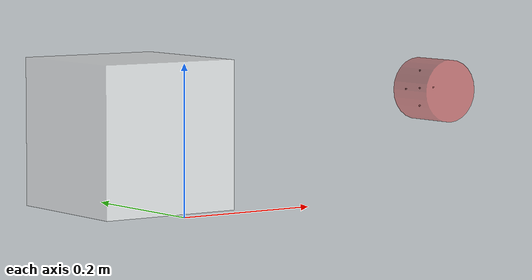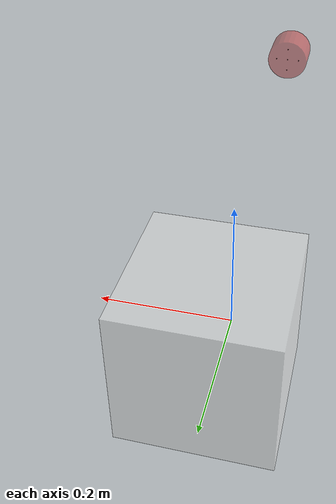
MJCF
<mujoco model="onshape">
    <compiler angle="radian"/>

    <option integrator="implicit" cone="elliptic" impratio="10" noslip_iterations="15"/>

    <default class="main">
        <geom condim="6"/>
    </default>

    <visual>
        <global offwidth="1920" offheight="1080"/>
    </visual>

    <worldbody>
        <!-- create a box geom-->
        <body name="box" pos="0 0.13 0.1">
            <geom name="metal_box" type="box" size="0.1 0.1 0.1"  rgba="1 1 1 0.5"/>
        </body>

        <body name="magnet_box" pos="0 -0.5 0.2" zaxis="0 1 0">
            <inertial mass ="0.5" pos="0 0 0" diaginertia="0.000148 0.000148 0.000225"/>
            <freejoint/>
            <geom name="mag_box" type="cylinder" size="0.035 0.029" rgba="0.8 0.2 0.2 0.5"/>
            <geom name="mag_pt0" pos="0 0 0.025" type="sphere" size="0.001"/>
            <geom name="mag_pt1" pos="0 -0.02 0.025" type="sphere" size="0.001"/>
            <geom name="mag_pt2" pos="0 0.02 0.025" type="sphere" size="0.001"/>
            <geom name="mag_pt3" pos="-0.02 0 0.025" type="sphere" size="0.001"/>
            <geom name="mag_pt4" pos="0.02 0 0.025" type="sphere" size="0.001"/>
        </body>

    </worldbody>

</mujoco>
